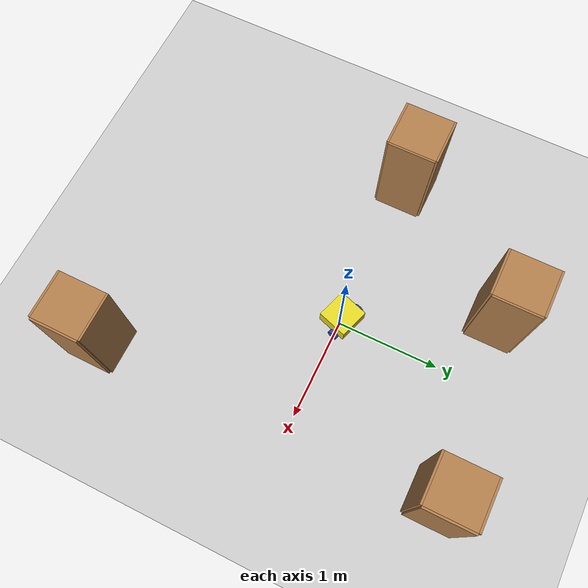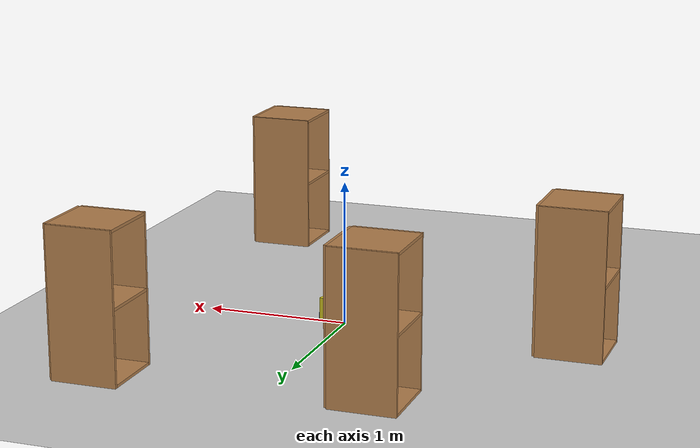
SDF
<sdf version="1.7">
 <world name="default">
  <light name="sun" type="directional">
   <pose>0 0 10 0 -0 0</pose>
   <diffuse>0.8 0.8 0.8 1</diffuse>
   <specular>0.2 0.2 0.2 1</specular>
   <attenuation>
    <range>1000</range>
    <constant>0.9</constant>
    <linear>0.01</linear>
    <quadratic>0.001</quadratic>
   </attenuation>
   <direction>-0.5 0.1 -0.9</direction>
   <spot><inner_angle>0</inner_angle><outer_angle>0</outer_angle><falloff>0</falloff></spot>
  </light>
  <model name="ground_plane">
   <static>1</static>
   <link name="link">
    <collision name="collision">
     <geometry><plane><normal>0 0 1</normal><size>100 100</size></plane></geometry>
     <surface>
      <contact><collide_bitmask>65535</collide_bitmask></contact>
      <friction><ode><mu>100</mu><mu2>50</mu2></ode></friction>
     </surface>
    </collision>
    <visual name="visual">
     <cast_shadows>0</cast_shadows>
     <geometry><plane><normal>0 0 1</normal><size>100 100</size></plane></geometry>
     <material>
      <script><uri>file://media/materials/scripts/gazebo.material</uri><name>Gazebo/Grey</name></script>
     </material>
    </visual>
   </link>
  </model>
  <gravity>0 0 -9.8</gravity>
  <magnetic_field>6e-06 2.3e-05 -4.2e-05</magnetic_field>
  <atmosphere type="adiabatic"/>
  <physics type="ode">
   <max_step_size>0.001</max_step_size>
   <real_time_factor>1</real_time_factor>
   <real_time_update_rate>1000</real_time_update_rate>
  </physics>
  <scene><ambient>0.4 0.4 0.4 1</ambient><background>0.7 0.7 0.7 1</background><shadows>1</shadows></scene>
  <audio><device>default</device></audio>
  <spherical_coordinates>
   <surface_model>EARTH_WGS84</surface_model>
   <latitude_deg>0</latitude_deg>
   <longitude_deg>0</longitude_deg>
   <elevation>0</elevation>
   <heading_deg>0</heading_deg>
  </spherical_coordinates>
  <model name="my_bot">
   <link name="base_link">
    <inertial>
     <pose>0.05 0 0.075 0 -0 0</pose>
     <mass>0.5</mass>
     <inertia>
      <ixx>0.0046875</ixx>
      <ixy>0</ixy>
      <ixz>0</ixz>
      <iyy>0.0046875</iyy>
      <iyz>0</iyz>
      <izz>0.0075</izz>
     </inertia>
    </inertial>
    <collision name="base_link_fixed_joint_lump__chassis_collision">
     <pose>0.05 0 0.075 0 -0 0</pose>
     <geometry><box><size>0.3 0.3 0.15</size></box></geometry>
    </collision>
    <collision name="base_link_fixed_joint_lump__caster_wheel_collision_1">
     <pose>0.14 0 0 0 -0 0</pose>
     <geometry><sphere><radius>0.05</radius></sphere></geometry>
     <surface><friction><ode><mu>0.001</mu><mu2>0.001</mu2></ode></friction></surface>
    </collision>
    <visual name="base_link_fixed_joint_lump__chassis_visual">
     <pose>0.05 0 0.075 0 -0 0</pose>
     <geometry><box><size>0.3 0.3 0.15</size></box></geometry>
     <material>
      <script><name>Gazebo/Yellow</name><uri>file://media/materials/scripts/gazebo.material</uri></script>
     </material>
    </visual>
    <visual name="base_link_fixed_joint_lump__caster_wheel_visual_1">
     <pose>0.14 0 0 0 -0 0</pose>
     <geometry><sphere><radius>0.05</radius></sphere></geometry>
     <material>
      <script><name>Gazebo/Red</name><uri>file://media/materials/scripts/gazebo.material</uri></script>
     </material>
    </visual>
   </link>
   <joint name="left_wheel_joint" type="revolute">
    <pose relative_to="base_link">0 0.175 0 -1.5708 0 0</pose>
    <parent>base_link</parent>
    <child>left_wheel</child>
    <axis>
     <xyz>0 0 1</xyz>
     <limit><lower>-1e+16</lower><upper>1e+16</upper></limit>
     <dynamics><spring_reference>0</spring_reference><spring_stiffness>0</spring_stiffness></dynamics>
    </axis>
   </joint>
   <link name="left_wheel">
    <pose relative_to="left_wheel_joint">0 0 0 0 -0 0</pose>
    <inertial>
     <mass>0.1</mass>
     <inertia>
      <ixx>8.33333e-05</ixx>
      <ixy>0</ixy>
      <ixz>0</ixz>
      <iyy>8.33333e-05</iyy>
      <iyz>0</iyz>
      <izz>0.000125</izz>
     </inertia>
    </inertial>
    <collision name="left_wheel_collision">
     <geometry><cylinder><length>0.04</length><radius>0.05</radius></cylinder></geometry>
    </collision>
    <visual name="left_wheel_visual">
     <geometry><cylinder><length>0.04</length><radius>0.05</radius></cylinder></geometry>
     <material>
      <script><name>Gazebo/Blue</name><uri>file://media/materials/scripts/gazebo.material</uri></script>
     </material>
    </visual>
   </link>
   <joint name="right_wheel_joint" type="revolute">
    <pose relative_to="base_link">0 -0.175 0 1.5708 -0 0</pose>
    <parent>base_link</parent>
    <child>right_wheel</child>
    <axis>
     <xyz>0 0 -1</xyz>
     <limit><lower>-1e+16</lower><upper>1e+16</upper></limit>
     <dynamics><spring_reference>0</spring_reference><spring_stiffness>0</spring_stiffness></dynamics>
    </axis>
   </joint>
   <link name="right_wheel">
    <pose relative_to="right_wheel_joint">0 0 0 0 -0 0</pose>
    <inertial>
     <mass>0.1</mass>
     <inertia><ixx>0.0001</ixx><ixy>0</ixy><ixz>0</ixz><iyy>0.0001</iyy><iyz>0</iyz><izz>0.0001</izz></inertia>
    </inertial>
    <collision name="right_wheel_collision">
     <geometry><cylinder><length>0.04</length><radius>0.05</radius></cylinder></geometry>
    </collision>
    <visual name="right_wheel_visual">
     <geometry><cylinder><length>0.04</length><radius>0.05</radius></cylinder></geometry>
     <material>
      <script><name>Gazebo/Blue</name><uri>file://media/materials/scripts/gazebo.material</uri></script>
     </material>
    </visual>
   </link>
   <static>0</static>
   <plugin name="diff_drive" filename="libgazebo_ros_diff_drive.so">
    <left_joint>left_wheel_joint</left_joint>
    <right_joint>right_wheel_joint</right_joint>
    <wheel_separation>0.35</wheel_separation>
    <wheel_diameter>0.1</wheel_diameter>
    <max_wheel_torque>200</max_wheel_torque>
    <max_wheel_acceleration>10.0</max_wheel_acceleration>
    <odometry_frame>odom</odometry_frame>
    <robot_base_frame>base_link</robot_base_frame>
    <publish_odom>1</publish_odom>
    <publish_odom_tf>1</publish_odom_tf>
    <publish_wheel_tf>1</publish_wheel_tf>
   </plugin>
   <pose>-0.023396 0.049258 0.05 0 1.1e-05 -1.88613</pose>
  </model>
  <model name="cabinet">
   <static>1</static>
   <link name="cabinet_bottom_plate">
    <inertial>
     <pose>0 0 -1 0 -0 0</pose>
     <inertia><ixx>2.05</ixx><ixy>0</ixy><ixz>0</ixz><iyy>2.05</iyy><iyz>0</iyz><izz>2.05</izz></inertia>
     <mass>25</mass>
    </inertial>
    <collision name="cabinet_bottom_plate_geom">
     <pose>0 0 0.01 0 -0 0</pose>
     <geometry><box><size>0.45 0.45 0.02</size></box></geometry>
    </collision>
    <visual name="cabinet_bottom_plate_geom_visual">
     <pose>0 0 0.01 0 -0 0</pose>
     <geometry><box><size>0.45 0.45 0.02</size></box></geometry>
     <material>
      <script><uri>file://media/materials/scripts/gazebo.material</uri><name>Gazebo/Wood</name></script>
     </material>
    </visual>
    <collision name="cabinet_bottom_plate_geom_cabinet_back_plate">
     <pose>0.235 0 0.51 0 -0 0</pose>
     <geometry><box><size>0.02 0.45 1.02</size></box></geometry>
    </collision>
    <visual name="cabinet_bottom_plate_geom_cabinet_back_plate_visual">
     <pose>0.235 0 0.51 0 -0 0</pose>
     <geometry><box><size>0.02 0.45 1.02</size></box></geometry>
     <material>
      <script><uri>file://media/materials/scripts/gazebo.material</uri><name>Gazebo/Wood</name></script>
     </material>
    </visual>
    <collision name="cabinet_bottom_plate_geom_cabinet_left_plate">
     <pose>0 0.235 0.51 0 -0 0</pose>
     <geometry><box><size>0.45 0.02 1.02</size></box></geometry>
    </collision>
    <visual name="cabinet_bottom_plate_geom_cabinet_left_plate_visual">
     <pose>0 0.235 0.51 0 -0 0</pose>
     <geometry><box><size>0.45 0.02 1.02</size></box></geometry>
     <material>
      <script><uri>file://media/materials/scripts/gazebo.material</uri><name>Gazebo/Wood</name></script>
     </material>
    </visual>
    <collision name="cabinet_bottom_plate_geom_cabinet_middle_plate">
     <pose>0 0 0.51 0 -0 0</pose>
     <geometry><box><size>0.45 0.45 0.02</size></box></geometry>
    </collision>
    <visual name="cabinet_bottom_plate_geom_cabinet_middle_plate_visual">
     <pose>0 0 0.51 0 -0 0</pose>
     <geometry><box><size>0.45 0.45 0.02</size></box></geometry>
     <material>
      <script><uri>file://media/materials/scripts/gazebo.material</uri><name>Gazebo/Wood</name></script>
     </material>
    </visual>
    <collision name="cabinet_bottom_plate_geom_cabinet_right_plate">
     <pose>0 -0.235 0.51 0 -0 0</pose>
     <geometry><box><size>0.45 0.02 1.02</size></box></geometry>
    </collision>
    <visual name="cabinet_bottom_plate_geom_cabinet_right_plate_visual">
     <pose>0 -0.235 0.51 0 -0 0</pose>
     <geometry><box><size>0.45 0.02 1.02</size></box></geometry>
     <material>
      <script><uri>file://media/materials/scripts/gazebo.material</uri><name>Gazebo/Wood</name></script>
     </material>
    </visual>
    <collision name="cabinet_bottom_plate_geom_cabinet_top_plate">
     <pose>0 0 1.01 0 -0 0</pose>
     <geometry><box><size>0.45 0.45 0.02</size></box></geometry>
    </collision>
    <visual name="cabinet_bottom_plate_geom_cabinet_top_plate_visual">
     <pose>0 0 1.01 0 -0 0</pose>
     <geometry><box><size>0.45 0.45 0.02</size></box></geometry>
     <material>
      <script><uri>file://media/materials/scripts/gazebo.material</uri><name>Gazebo/Wood</name></script>
     </material>
    </visual>
   </link>
   <pose>-1.62148 -0.00631 0 0 -0 0</pose>
  </model>
  <model name="cabinet_0">
   <static>1</static>
   <link name="cabinet_bottom_plate">
    <inertial>
     <pose>0 0 -1 0 -0 0</pose>
     <inertia><ixx>2.05</ixx><ixy>0</ixy><ixz>0</ixz><iyy>2.05</iyy><iyz>0</iyz><izz>2.05</izz></inertia>
     <mass>25</mass>
    </inertial>
    <collision name="cabinet_bottom_plate_geom">
     <pose>0 0 0.01 0 -0 0</pose>
     <geometry><box><size>0.45 0.45 0.02</size></box></geometry>
    </collision>
    <visual name="cabinet_bottom_plate_geom_visual">
     <pose>0 0 0.01 0 -0 0</pose>
     <geometry><box><size>0.45 0.45 0.02</size></box></geometry>
     <material>
      <script><uri>file://media/materials/scripts/gazebo.material</uri><name>Gazebo/Wood</name></script>
     </material>
    </visual>
    <collision name="cabinet_bottom_plate_geom_cabinet_back_plate">
     <pose>0.235 0 0.51 0 -0 0</pose>
     <geometry><box><size>0.02 0.45 1.02</size></box></geometry>
    </collision>
    <visual name="cabinet_bottom_plate_geom_cabinet_back_plate_visual">
     <pose>0.235 0 0.51 0 -0 0</pose>
     <geometry><box><size>0.02 0.45 1.02</size></box></geometry>
     <material>
      <script><uri>file://media/materials/scripts/gazebo.material</uri><name>Gazebo/Wood</name></script>
     </material>
    </visual>
    <collision name="cabinet_bottom_plate_geom_cabinet_left_plate">
     <pose>0 0.235 0.51 0 -0 0</pose>
     <geometry><box><size>0.45 0.02 1.02</size></box></geometry>
    </collision>
    <visual name="cabinet_bottom_plate_geom_cabinet_left_plate_visual">
     <pose>0 0.235 0.51 0 -0 0</pose>
     <geometry><box><size>0.45 0.02 1.02</size></box></geometry>
     <material>
      <script><uri>file://media/materials/scripts/gazebo.material</uri><name>Gazebo/Wood</name></script>
     </material>
    </visual>
    <collision name="cabinet_bottom_plate_geom_cabinet_middle_plate">
     <pose>0 0 0.51 0 -0 0</pose>
     <geometry><box><size>0.45 0.45 0.02</size></box></geometry>
    </collision>
    <visual name="cabinet_bottom_plate_geom_cabinet_middle_plate_visual">
     <pose>0 0 0.51 0 -0 0</pose>
     <geometry><box><size>0.45 0.45 0.02</size></box></geometry>
     <material>
      <script><uri>file://media/materials/scripts/gazebo.material</uri><name>Gazebo/Wood</name></script>
     </material>
    </visual>
    <collision name="cabinet_bottom_plate_geom_cabinet_right_plate">
     <pose>0 -0.235 0.51 0 -0 0</pose>
     <geometry><box><size>0.45 0.02 1.02</size></box></geometry>
    </collision>
    <visual name="cabinet_bottom_plate_geom_cabinet_right_plate_visual">
     <pose>0 -0.235 0.51 0 -0 0</pose>
     <geometry><box><size>0.45 0.02 1.02</size></box></geometry>
     <material>
      <script><uri>file://media/materials/scripts/gazebo.material</uri><name>Gazebo/Wood</name></script>
     </material>
    </visual>
    <collision name="cabinet_bottom_plate_geom_cabinet_top_plate">
     <pose>0 0 1.01 0 -0 0</pose>
     <geometry><box><size>0.45 0.45 0.02</size></box></geometry>
    </collision>
    <visual name="cabinet_bottom_plate_geom_cabinet_top_plate_visual">
     <pose>0 0 1.01 0 -0 0</pose>
     <geometry><box><size>0.45 0.45 0.02</size></box></geometry>
     <material>
      <script><uri>file://media/materials/scripts/gazebo.material</uri><name>Gazebo/Wood</name></script>
     </material>
    </visual>
   </link>
   <pose>1.12224 1.45787 0 0 -0 0</pose>
  </model>
  <model name="cabinet_1">
   <static>1</static>
   <link name="cabinet_bottom_plate">
    <inertial>
     <pose>0 0 -1 0 -0 0</pose>
     <inertia><ixx>2.05</ixx><ixy>0</ixy><ixz>0</ixz><iyy>2.05</iyy><iyz>0</iyz><izz>2.05</izz></inertia>
     <mass>25</mass>
    </inertial>
    <collision name="cabinet_bottom_plate_geom">
     <pose>0 0 0.01 0 -0 0</pose>
     <geometry><box><size>0.45 0.45 0.02</size></box></geometry>
    </collision>
    <visual name="cabinet_bottom_plate_geom_visual">
     <pose>0 0 0.01 0 -0 0</pose>
     <geometry><box><size>0.45 0.45 0.02</size></box></geometry>
     <material>
      <script><uri>file://media/materials/scripts/gazebo.material</uri><name>Gazebo/Wood</name></script>
     </material>
    </visual>
    <collision name="cabinet_bottom_plate_geom_cabinet_back_plate">
     <pose>0.235 0 0.51 0 -0 0</pose>
     <geometry><box><size>0.02 0.45 1.02</size></box></geometry>
    </collision>
    <visual name="cabinet_bottom_plate_geom_cabinet_back_plate_visual">
     <pose>0.235 0 0.51 0 -0 0</pose>
     <geometry><box><size>0.02 0.45 1.02</size></box></geometry>
     <material>
      <script><uri>file://media/materials/scripts/gazebo.material</uri><name>Gazebo/Wood</name></script>
     </material>
    </visual>
    <collision name="cabinet_bottom_plate_geom_cabinet_left_plate">
     <pose>0 0.235 0.51 0 -0 0</pose>
     <geometry><box><size>0.45 0.02 1.02</size></box></geometry>
    </collision>
    <visual name="cabinet_bottom_plate_geom_cabinet_left_plate_visual">
     <pose>0 0.235 0.51 0 -0 0</pose>
     <geometry><box><size>0.45 0.02 1.02</size></box></geometry>
     <material>
      <script><uri>file://media/materials/scripts/gazebo.material</uri><name>Gazebo/Wood</name></script>
     </material>
    </visual>
    <collision name="cabinet_bottom_plate_geom_cabinet_middle_plate">
     <pose>0 0 0.51 0 -0 0</pose>
     <geometry><box><size>0.45 0.45 0.02</size></box></geometry>
    </collision>
    <visual name="cabinet_bottom_plate_geom_cabinet_middle_plate_visual">
     <pose>0 0 0.51 0 -0 0</pose>
     <geometry><box><size>0.45 0.45 0.02</size></box></geometry>
     <material>
      <script><uri>file://media/materials/scripts/gazebo.material</uri><name>Gazebo/Wood</name></script>
     </material>
    </visual>
    <collision name="cabinet_bottom_plate_geom_cabinet_right_plate">
     <pose>0 -0.235 0.51 0 -0 0</pose>
     <geometry><box><size>0.45 0.02 1.02</size></box></geometry>
    </collision>
    <visual name="cabinet_bottom_plate_geom_cabinet_right_plate_visual">
     <pose>0 -0.235 0.51 0 -0 0</pose>
     <geometry><box><size>0.45 0.02 1.02</size></box></geometry>
     <material>
      <script><uri>file://media/materials/scripts/gazebo.material</uri><name>Gazebo/Wood</name></script>
     </material>
    </visual>
    <collision name="cabinet_bottom_plate_geom_cabinet_top_plate">
     <pose>0 0 1.01 0 -0 0</pose>
     <geometry><box><size>0.45 0.45 0.02</size></box></geometry>
    </collision>
    <visual name="cabinet_bottom_plate_geom_cabinet_top_plate_visual">
     <pose>0 0 1.01 0 -0 0</pose>
     <geometry><box><size>0.45 0.45 0.02</size></box></geometry>
     <material>
      <script><uri>file://media/materials/scripts/gazebo.material</uri><name>Gazebo/Wood</name></script>
     </material>
    </visual>
   </link>
   <pose>-0.670634 1.33157 0 0 -0 0</pose>
  </model>
  <model name="cabinet_2">
   <static>1</static>
   <link name="cabinet_bottom_plate">
    <inertial>
     <pose>0 0 -1 0 -0 0</pose>
     <inertia><ixx>2.05</ixx><ixy>0</ixy><ixz>0</ixz><iyy>2.05</iyy><iyz>0</iyz><izz>2.05</izz></inertia>
     <mass>25</mass>
    </inertial>
    <collision name="cabinet_bottom_plate_geom">
     <pose>0 0 0.01 0 -0 0</pose>
     <geometry><box><size>0.45 0.45 0.02</size></box></geometry>
    </collision>
    <visual name="cabinet_bottom_plate_geom_visual">
     <pose>0 0 0.01 0 -0 0</pose>
     <geometry><box><size>0.45 0.45 0.02</size></box></geometry>
     <material>
      <script><uri>file://media/materials/scripts/gazebo.material</uri><name>Gazebo/Wood</name></script>
     </material>
    </visual>
    <collision name="cabinet_bottom_plate_geom_cabinet_back_plate">
     <pose>0.235 0 0.51 0 -0 0</pose>
     <geometry><box><size>0.02 0.45 1.02</size></box></geometry>
    </collision>
    <visual name="cabinet_bottom_plate_geom_cabinet_back_plate_visual">
     <pose>0.235 0 0.51 0 -0 0</pose>
     <geometry><box><size>0.02 0.45 1.02</size></box></geometry>
     <material>
      <script><uri>file://media/materials/scripts/gazebo.material</uri><name>Gazebo/Wood</name></script>
     </material>
    </visual>
    <collision name="cabinet_bottom_plate_geom_cabinet_left_plate">
     <pose>0 0.235 0.51 0 -0 0</pose>
     <geometry><box><size>0.45 0.02 1.02</size></box></geometry>
    </collision>
    <visual name="cabinet_bottom_plate_geom_cabinet_left_plate_visual">
     <pose>0 0.235 0.51 0 -0 0</pose>
     <geometry><box><size>0.45 0.02 1.02</size></box></geometry>
     <material>
      <script><uri>file://media/materials/scripts/gazebo.material</uri><name>Gazebo/Wood</name></script>
     </material>
    </visual>
    <collision name="cabinet_bottom_plate_geom_cabinet_middle_plate">
     <pose>0 0 0.51 0 -0 0</pose>
     <geometry><box><size>0.45 0.45 0.02</size></box></geometry>
    </collision>
    <visual name="cabinet_bottom_plate_geom_cabinet_middle_plate_visual">
     <pose>0 0 0.51 0 -0 0</pose>
     <geometry><box><size>0.45 0.45 0.02</size></box></geometry>
     <material>
      <script><uri>file://media/materials/scripts/gazebo.material</uri><name>Gazebo/Wood</name></script>
     </material>
    </visual>
    <collision name="cabinet_bottom_plate_geom_cabinet_right_plate">
     <pose>0 -0.235 0.51 0 -0 0</pose>
     <geometry><box><size>0.45 0.02 1.02</size></box></geometry>
    </collision>
    <visual name="cabinet_bottom_plate_geom_cabinet_right_plate_visual">
     <pose>0 -0.235 0.51 0 -0 0</pose>
     <geometry><box><size>0.45 0.02 1.02</size></box></geometry>
     <material>
      <script><uri>file://media/materials/scripts/gazebo.material</uri><name>Gazebo/Wood</name></script>
     </material>
    </visual>
    <collision name="cabinet_bottom_plate_geom_cabinet_top_plate">
     <pose>0 0 1.01 0 -0 0</pose>
     <geometry><box><size>0.45 0.45 0.02</size></box></geometry>
    </collision>
    <visual name="cabinet_bottom_plate_geom_cabinet_top_plate_visual">
     <pose>0 0 1.01 0 -0 0</pose>
     <geometry><box><size>0.45 0.45 0.02</size></box></geometry>
     <material>
      <script><uri>file://media/materials/scripts/gazebo.material</uri><name>Gazebo/Wood</name></script>
     </material>
    </visual>
   </link>
   <pose>1.15408 -1.95913 0 0 -0 0</pose>
  </model>
 </world>
</sdf>
